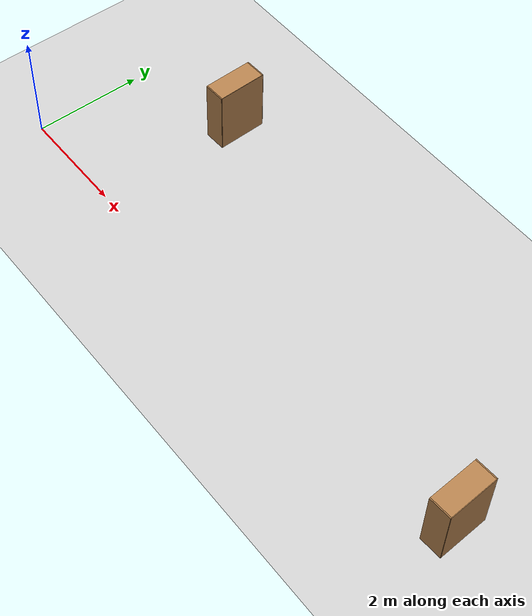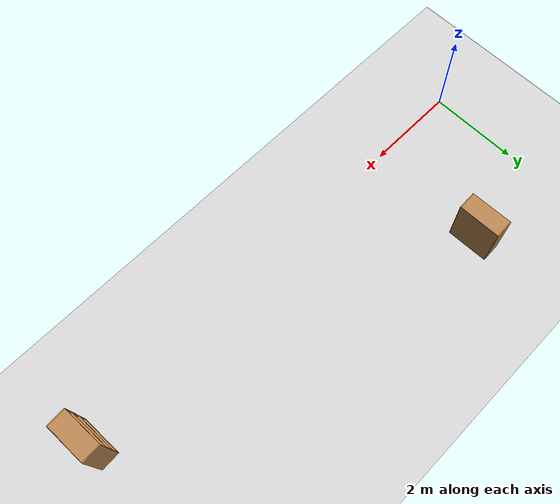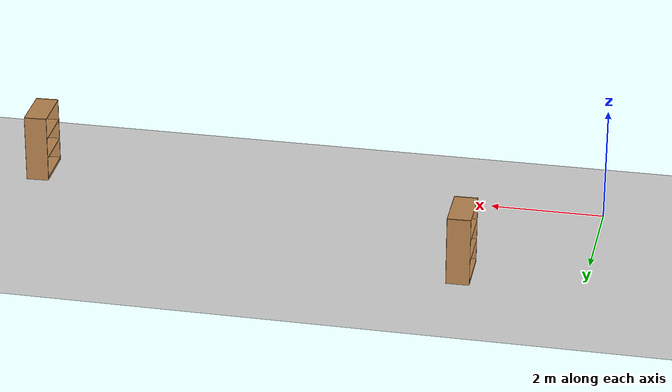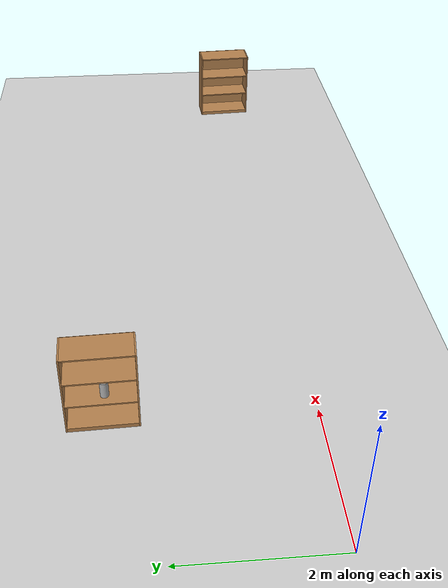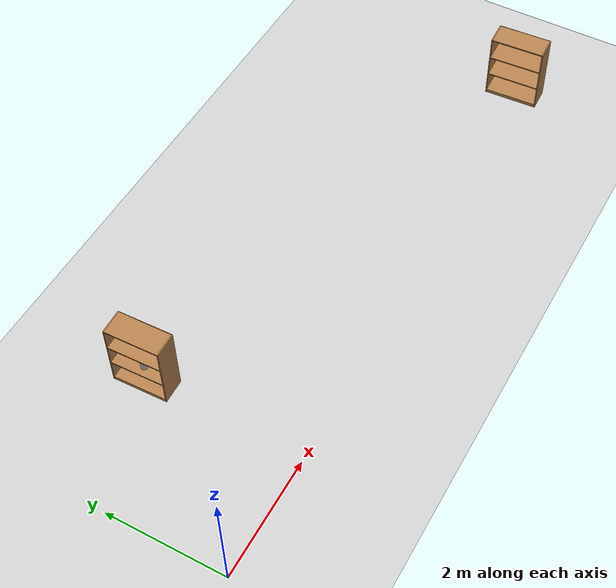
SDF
<sdf version="1.7">
 <world name="default">
  <light name="sun" type="directional">
   <pose>0 0 10 0 -0 0</pose>
   <diffuse>0.8 0.8 0.8 1</diffuse>
   <specular>0.2 0.2 0.2 1</specular>
   <attenuation>
    <range>1000</range>
    <constant>0.9</constant>
    <linear>0.01</linear>
    <quadratic>0.001</quadratic>
   </attenuation>
   <direction>-0.5 0.1 -0.9</direction>
   <spot><inner_angle>0</inner_angle><outer_angle>0</outer_angle><falloff>0</falloff></spot>
  </light>
  <model name="ground_plane">
   <static>1</static>
   <link name="link">
    <collision name="collision">
     <geometry><plane><normal>0 0 1</normal><size>100 100</size></plane></geometry>
     <surface>
      <contact><collide_bitmask>65535</collide_bitmask></contact>
      <friction><ode><mu>100</mu><mu2>50</mu2></ode></friction>
     </surface>
    </collision>
    <visual name="visual">
     <cast_shadows>0</cast_shadows>
     <geometry><plane><normal>0 0 1</normal><size>100 100</size></plane></geometry>
     <material>
      <script><uri>file://media/materials/scripts/gazebo.material</uri><name>Gazebo/Grey</name></script>
     </material>
    </visual>
   </link>
  </model>
  <gravity>0 0 -9.8</gravity>
  <magnetic_field>6e-06 2.3e-05 -4.2e-05</magnetic_field>
  <atmosphere type="adiabatic"/>
  <physics type="ode">
   <max_step_size>0.001</max_step_size>
   <real_time_factor>1</real_time_factor>
   <real_time_update_rate>1000</real_time_update_rate>
  </physics>
  <scene><ambient>0.4 0.4 0.4 1</ambient><background>0.7 0.7 0.7 1</background><shadows>1</shadows></scene>
  <spherical_coordinates>
   <surface_model>EARTH_WGS84</surface_model>
   <latitude_deg>0</latitude_deg>
   <longitude_deg>0</longitude_deg>
   <elevation>0</elevation>
   <heading_deg>0</heading_deg>
  </spherical_coordinates>
  <model name="bookshelf">
   <static>1</static>
   <link name="link">
    <inertial><mass>1</mass></inertial>
    <collision name="back">
     <pose>0 0.005 0.6 0 -0 0</pose>
     <geometry><box><size>0.9 0.01 1.2</size></box></geometry>
    </collision>
    <visual name="visual1">
     <pose>0 0.005 0.6 0 -0 0</pose>
     <geometry><box><size>0.9 0.01 1.2</size></box></geometry>
     <material>
      <script><uri>file://media/materials/scripts/gazebo.material</uri><name>Gazebo/Wood</name></script>
     </material>
    </visual>
    <collision name="left_side">
     <pose>0.45 -0.195 0.6 0 -0 0</pose>
     <geometry><box><size>0.02 0.4 1.2</size></box></geometry>
    </collision>
    <visual name="visual2">
     <pose>0.45 -0.195 0.6 0 -0 0</pose>
     <geometry><box><size>0.02 0.4 1.2</size></box></geometry>
     <material>
      <script><uri>file://media/materials/scripts/gazebo.material</uri><name>Gazebo/Wood</name></script>
     </material>
    </visual>
    <collision name="right_side">
     <pose>-0.45 -0.195 0.6 0 -0 0</pose>
     <geometry><box><size>0.02 0.4 1.2</size></box></geometry>
    </collision>
    <visual name="visual3">
     <pose>-0.45 -0.195 0.6 0 -0 0</pose>
     <geometry><box><size>0.02 0.4 1.2</size></box></geometry>
     <material>
      <script><uri>file://media/materials/scripts/gazebo.material</uri><name>Gazebo/Wood</name></script>
     </material>
    </visual>
    <collision name="bottom">
     <pose>0 -0.195 0.03 0 -0 0</pose>
     <geometry><box><size>0.88 0.4 0.06</size></box></geometry>
    </collision>
    <visual name="visual4">
     <pose>0 -0.195 0.03 0 -0 0</pose>
     <geometry><box><size>0.88 0.4 0.06</size></box></geometry>
     <material>
      <script><uri>file://media/materials/scripts/gazebo.material</uri><name>Gazebo/Wood</name></script>
     </material>
    </visual>
    <collision name="top">
     <pose>0 -0.195 1.19 0 -0 0</pose>
     <geometry><box><size>0.88 0.4 0.02</size></box></geometry>
    </collision>
    <visual name="visual5">
     <pose>0 -0.195 1.19 0 -0 0</pose>
     <geometry><box><size>0.88 0.4 0.02</size></box></geometry>
     <material>
      <script><uri>file://media/materials/scripts/gazebo.material</uri><name>Gazebo/Wood</name></script>
     </material>
    </visual>
    <collision name="low_shelf">
     <pose>0 -0.195 0.43 0 -0 0</pose>
     <geometry><box><size>0.88 0.4 0.02</size></box></geometry>
    </collision>
    <visual name="visual6">
     <pose>0 -0.195 0.43 0 -0 0</pose>
     <geometry><box><size>0.88 0.4 0.02</size></box></geometry>
     <material>
      <script><uri>file://media/materials/scripts/gazebo.material</uri><name>Gazebo/Wood</name></script>
     </material>
    </visual>
    <collision name="high_shelf">
     <pose>0 -0.195 0.8 0 -0 0</pose>
     <geometry><box><size>0.88 0.4 0.02</size></box></geometry>
    </collision>
    <visual name="visual7">
     <pose>0 -0.195 0.8 0 -0 0</pose>
     <geometry><box><size>0.88 0.4 0.02</size></box></geometry>
     <material>
      <script><uri>file://media/materials/scripts/gazebo.material</uri><name>Gazebo/Wood</name></script>
     </material>
    </visual>
   </link>
   <pose>2.29915 2.7095 0 0 0 -1.54081</pose>
  </model>
  <model name="bookshelf_clone">
   <static>1</static>
   <link name="link">
    <inertial><mass>1</mass></inertial>
    <collision name="back">
     <pose>0 0.005 0.6 0 -0 0</pose>
     <geometry><box><size>0.9 0.01 1.2</size></box></geometry>
    </collision>
    <visual name="visual1">
     <pose>0 0.005 0.6 0 -0 0</pose>
     <geometry><box><size>0.9 0.01 1.2</size></box></geometry>
     <material>
      <script><uri>file://media/materials/scripts/gazebo.material</uri><name>Gazebo/Wood</name></script>
     </material>
    </visual>
    <collision name="left_side">
     <pose>0.45 -0.195 0.6 0 -0 0</pose>
     <geometry><box><size>0.02 0.4 1.2</size></box></geometry>
    </collision>
    <visual name="visual2">
     <pose>0.45 -0.195 0.6 0 -0 0</pose>
     <geometry><box><size>0.02 0.4 1.2</size></box></geometry>
     <material>
      <script><uri>file://media/materials/scripts/gazebo.material</uri><name>Gazebo/Wood</name></script>
     </material>
    </visual>
    <collision name="right_side">
     <pose>-0.45 -0.195 0.6 0 -0 0</pose>
     <geometry><box><size>0.02 0.4 1.2</size></box></geometry>
    </collision>
    <visual name="visual3">
     <pose>-0.45 -0.195 0.6 0 -0 0</pose>
     <geometry><box><size>0.02 0.4 1.2</size></box></geometry>
     <material>
      <script><uri>file://media/materials/scripts/gazebo.material</uri><name>Gazebo/Wood</name></script>
     </material>
    </visual>
    <collision name="bottom">
     <pose>0 -0.195 0.03 0 -0 0</pose>
     <geometry><box><size>0.88 0.4 0.06</size></box></geometry>
    </collision>
    <visual name="visual4">
     <pose>0 -0.195 0.03 0 -0 0</pose>
     <geometry><box><size>0.88 0.4 0.06</size></box></geometry>
     <material>
      <script><uri>file://media/materials/scripts/gazebo.material</uri><name>Gazebo/Wood</name></script>
     </material>
    </visual>
    <collision name="top">
     <pose>0 -0.195 1.19 0 -0 0</pose>
     <geometry><box><size>0.88 0.4 0.02</size></box></geometry>
    </collision>
    <visual name="visual5">
     <pose>0 -0.195 1.19 0 -0 0</pose>
     <geometry><box><size>0.88 0.4 0.02</size></box></geometry>
     <material>
      <script><uri>file://media/materials/scripts/gazebo.material</uri><name>Gazebo/Wood</name></script>
     </material>
    </visual>
    <collision name="low_shelf">
     <pose>0 -0.195 0.43 0 -0 0</pose>
     <geometry><box><size>0.88 0.4 0.02</size></box></geometry>
    </collision>
    <visual name="visual6">
     <pose>0 -0.195 0.43 0 -0 0</pose>
     <geometry><box><size>0.88 0.4 0.02</size></box></geometry>
     <material>
      <script><uri>file://media/materials/scripts/gazebo.material</uri><name>Gazebo/Wood</name></script>
     </material>
    </visual>
    <collision name="high_shelf">
     <pose>0 -0.195 0.8 0 -0 0</pose>
     <geometry><box><size>0.88 0.4 0.02</size></box></geometry>
    </collision>
    <visual name="visual7">
     <pose>0 -0.195 0.8 0 -0 0</pose>
     <geometry><box><size>0.88 0.4 0.02</size></box></geometry>
     <material>
      <script><uri>file://media/materials/scripts/gazebo.material</uri><name>Gazebo/Wood</name></script>
     </material>
    </visual>
   </link>
   <pose>10.3777 0.374446 0.102244 0 -0 -1.51871</pose>
  </model>
  <model name="beer">
   <link name="link">
    <pose>0 0 0.115 0 -0 0</pose>
    <inertial>
     <mass>0.39</mass>
     <inertia><ixx>0.00058</ixx><ixy>0</ixy><ixz>0</ixz><iyy>0.00058</iyy><iyz>0</iyz><izz>0.00019</izz></inertia>
    </inertial>
    <collision name="collision">
     <geometry><cylinder><radius>0.055</radius><length>0.23</length></cylinder></geometry>
    </collision>
    <visual name="visual">
     <geometry><cylinder><radius>0.055</radius><length>0.23</length></cylinder></geometry>
     <material>
      <script>
       <uri>model://beer/materials/scripts</uri>
       <uri>model://beer/materials/textures</uri>
       <name>Beer/Diffuse</name>
      </script>
     </material>
    </visual>
   </link>
   <pose>2.05579 2.65879 0.440759 0 -0 0</pose>
  </model>
 </world>
</sdf>
